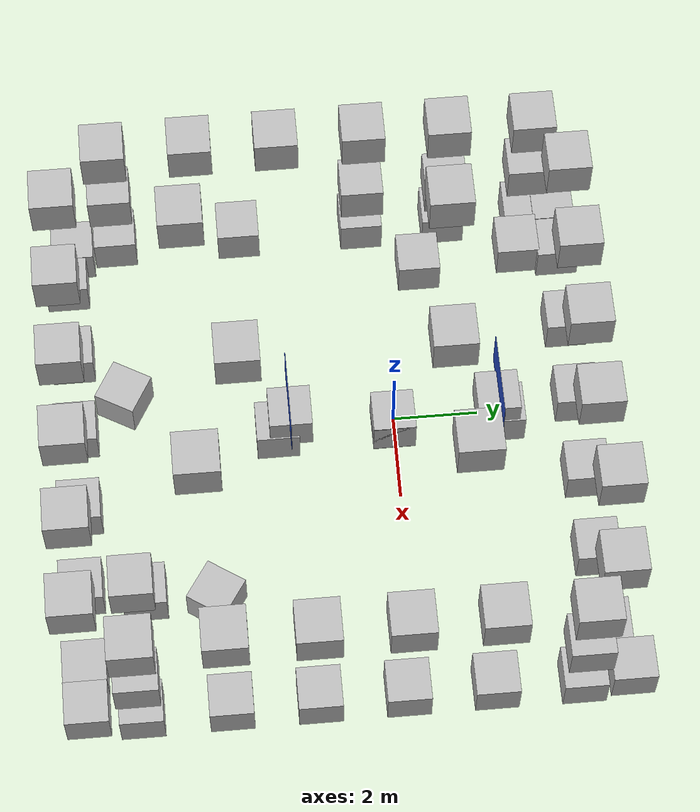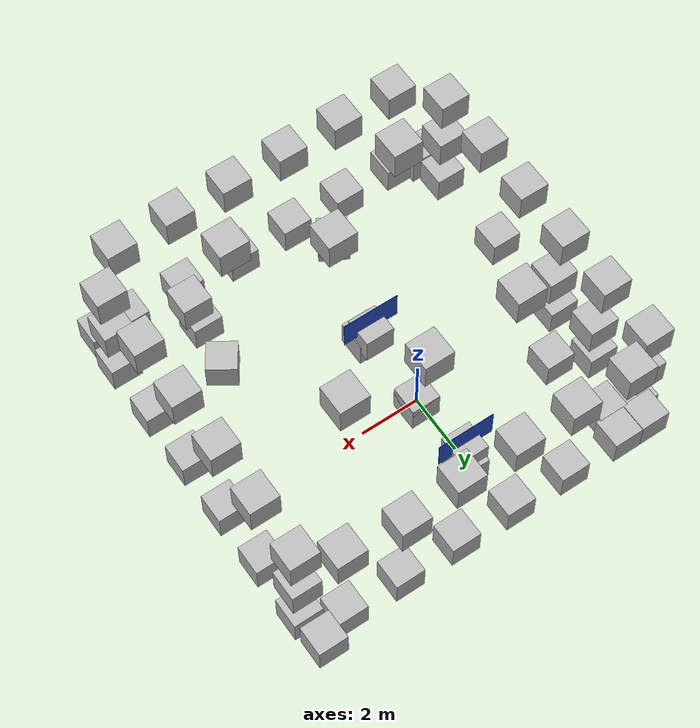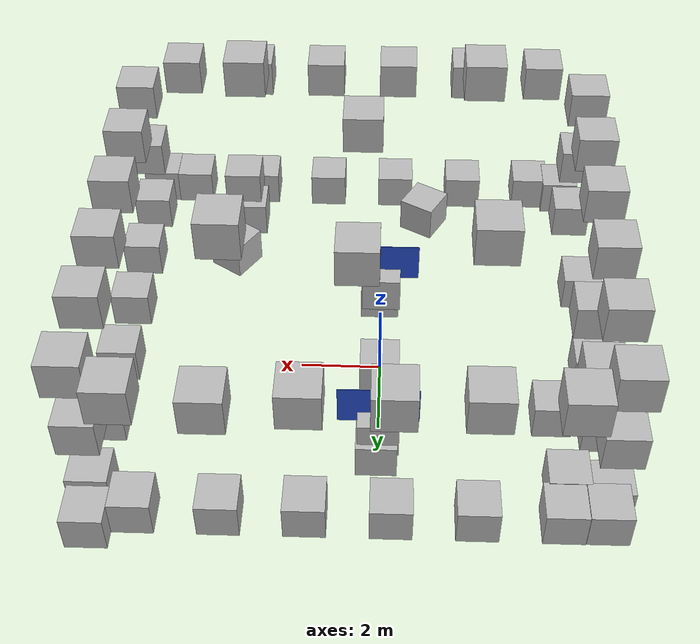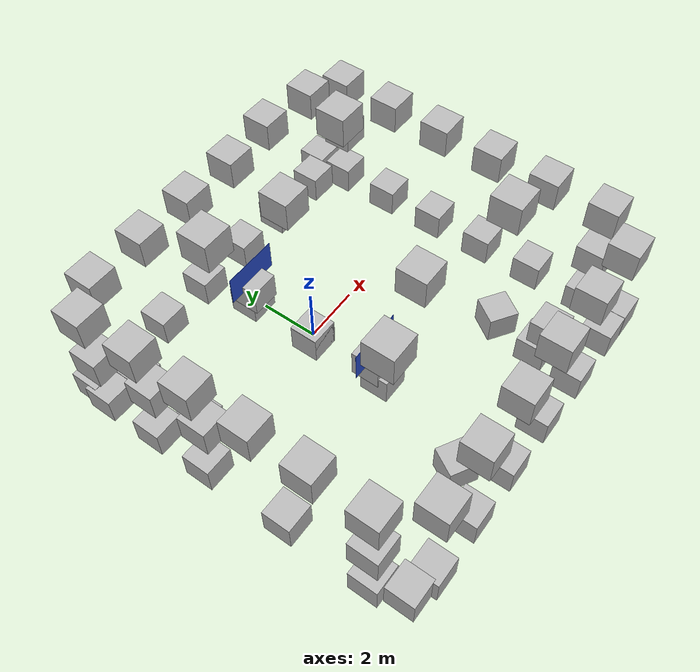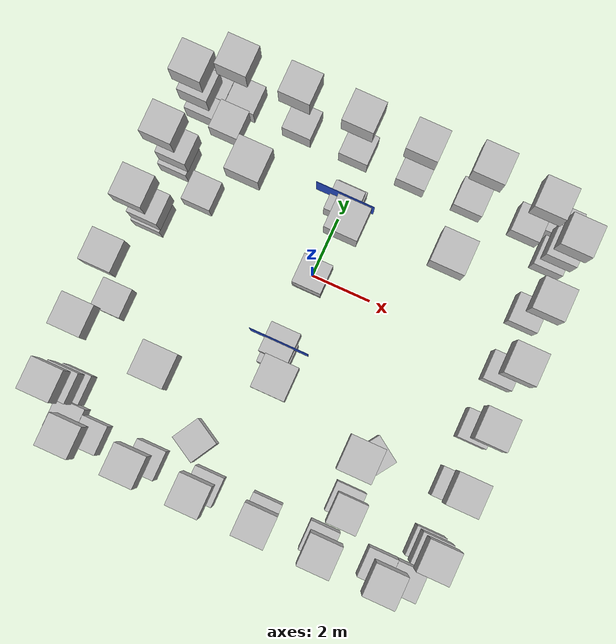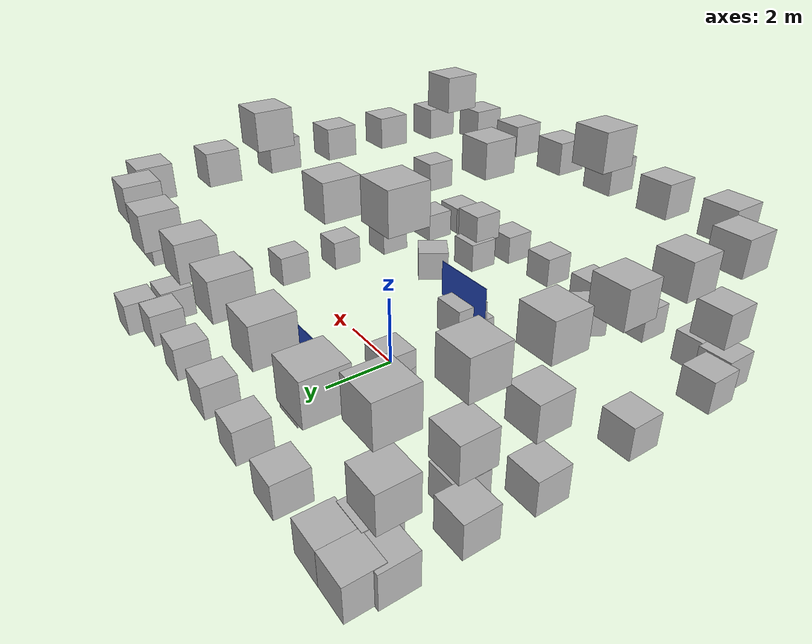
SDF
<sdf version="1.6">
 <world name="default">
  <model name="concretewall1_0">
   <static>1</static>
   <link name="concretewall::body">
    <collision name="concretewall1">
     <pose>0 0 1 0 0 0</pose>
     <geometry><box><size>2 0.4 2.0</size></box></geometry>
    </collision>
    <visual name="concretewall1"><geometry><box><size>1 1 1</size></box></geometry></visual>
    <velocity_decay><linear>0</linear><angular>0</angular></velocity_decay>
   </link>
   <pose>-5.46911 -2.30918 4.02082 0 -0 1.5708</pose>
  </model>
  <model name="concretewall1_1">
   <static>1</static>
   <link name="concretewall::body">
    <collision name="concretewall1">
     <pose>0 0 1 0 0 0</pose>
     <geometry><box><size>2 0.4 2.0</size></box></geometry>
    </collision>
    <visual name="concretewall1"><geometry><box><size>1 1 1</size></box></geometry></visual>
    <velocity_decay><linear>0</linear><angular>0</angular></velocity_decay>
   </link>
   <pose>-5.46911 -4.31171 4.02082 0 -0 1.5708</pose>
  </model>
  <model name="concretewall1_2">
   <static>1</static>
   <link name="concretewall::body">
    <collision name="concretewall1">
     <pose>0 0 1 0 0 0</pose>
     <geometry><box><size>2 0.4 2.0</size></box></geometry>
    </collision>
    <visual name="concretewall1"><geometry><box><size>1 1 1</size></box></geometry></visual>
    <velocity_decay><linear>0</linear><angular>0</angular></velocity_decay>
   </link>
   <pose>-4.343 -7.533 3.968 0 0 -3.14159</pose>
  </model>
  <model name="concretewall1_3">
   <static>1</static>
   <link name="concretewall::body">
    <collision name="concretewall1">
     <pose>0 0 1 0 0 0</pose>
     <geometry><box><size>2 0.4 2.0</size></box></geometry>
    </collision>
    <visual name="concretewall1"><geometry><box><size>1 1 1</size></box></geometry></visual>
    <velocity_decay><linear>0</linear><angular>0</angular></velocity_decay>
   </link>
   <pose>3.657 -7.533 3.968 0 0 -3.14159</pose>
  </model>
  <model name="concretewall1_4">
   <static>1</static>
   <link name="concretewall::body">
    <collision name="concretewall1">
     <pose>0 0 1 0 0 0</pose>
     <geometry><box><size>2 0.4 2.0</size></box></geometry>
    </collision>
    <visual name="concretewall1"><geometry><box><size>1 1 1</size></box></geometry></visual>
    <velocity_decay><linear>0</linear><angular>0</angular></velocity_decay>
   </link>
   <pose>5.657 -7.533 3.968 0 0 -3.14159</pose>
  </model>
  <model name="concretewall1_5">
   <static>1</static>
   <link name="concretewall::body">
    <collision name="concretewall1">
     <pose>0 0 1 0 0 0</pose>
     <geometry><box><size>2 0.4 2.0</size></box></geometry>
    </collision>
    <visual name="concretewall1"><geometry><box><size>1 1 1</size></box></geometry></visual>
    <velocity_decay><linear>0</linear><angular>0</angular></velocity_decay>
   </link>
   <pose>-4.343 4.378 3.968 0 0 -3.14159</pose>
  </model>
  <model name="woodwall_10">
   <static>1</static>
   <link name="woodwall::body">
    <collision name="woodwall-coll">
     <pose>0 0 1 0 0 0</pose>
     <geometry><box><size>2 0.4 2.0</size></box></geometry>
    </collision>
    <visual name="woodwall"><geometry><box><size>1 1 1</size></box></geometry></visual>
    <velocity_decay><linear>0</linear><angular>0</angular></velocity_decay>
   </link>
   <pose>6.748 3.697 2 0 -0 1.5708</pose>
  </model>
  <model name="woodwall_11">
   <static>1</static>
   <link name="woodwall::body">
    <collision name="woodwall-coll">
     <pose>0 0 1 0 0 0</pose>
     <geometry><box><size>2 0.4 2.0</size></box></geometry>
    </collision>
    <visual name="woodwall"><geometry><box><size>1 1 1</size></box></geometry></visual>
    <velocity_decay><linear>0</linear><angular>0</angular></velocity_decay>
   </link>
   <pose>6.748 3.697 3.977 0 -0 1.5708</pose>
  </model>
  <model name="right_vr_screen">
   <static>1</static>
   <link name="body">
    <collision name="frame">
     <pose>0 0.13 0.7 0 -0 0</pose>
     <geometry><box><size>2 0.18 1.4</size></box></geometry>
    </collision>
    <visual name="screen"><geometry><box><size>1 1 1</size></box></geometry></visual>
    <visual name="screen_glass">
     <cast_shadows>0</cast_shadows>
     <pose>0 0.02 0.75 0 -0 0</pose>
     <geometry><box><size>1.96 0.015 1.1</size></box></geometry>
     <material>
      <script><uri>file://media/materials/scripts/gazebo.material</uri><name>Gazebo/BlueGlow</name></script>
     </material>
    </visual>
    <gravity>0</gravity>
   </link>
   <pose>0 2.44 0.65 0 -0 0</pose>
  </model>
  <model name="bench_0">
   <static>1</static>
   <link name="bench::body">
    <collision name="bench-coll"><geometry><box><size>1 1 1</size></box></geometry></collision>
    <visual name="bench"><geometry><box><size>1 1 1</size></box></geometry></visual>
    <velocity_decay><linear>0</linear><angular>0</angular></velocity_decay>
   </link>
   <pose>-4.36935 1.01034 -0.280649 0 -0 0</pose>
  </model>
  <model name="woodtable_0">
   <static>1</static>
   <link name="woodtable::body">
    <collision name="woodtable-coll"><geometry><box><size>1 1 1</size></box></geometry></collision>
    <visual name="woodtable"><geometry><box><size>1 1 1</size></box></geometry></visual>
    <velocity_decay><linear>0</linear><angular>0</angular></velocity_decay>
   </link>
   <pose>3.90716 -6.09161 0.018804 0 -0 0</pose>
  </model>
  <model name="squarewindow_10">
   <static>1</static>
   <link name="squarewindow::body">
    <collision name="squarewindow-coll"><geometry><box><size>1 1 1</size></box></geometry></collision>
    <visual name="squarewindow"><geometry><box><size>1 1 1</size></box></geometry></visual>
    <velocity_decay><linear>0</linear><angular>0</angular></velocity_decay>
   </link>
   <pose>6.732 -2.29658 4.026 0 -0 1.5708</pose>
  </model>
  <model name="squarewindow_11">
   <static>1</static>
   <link name="squarewindow::body">
    <collision name="squarewindow-coll"><geometry><box><size>1 1 1</size></box></geometry></collision>
    <visual name="squarewindow"><geometry><box><size>1 1 1</size></box></geometry></visual>
    <velocity_decay><linear>0</linear><angular>0</angular></velocity_decay>
   </link>
   <pose>6.732 -4.29891 4.026 0 -0 1.5708</pose>
  </model>
  <model name="squarewindow_12">
   <static>1</static>
   <link name="squarewindow::body">
    <collision name="squarewindow-coll"><geometry><box><size>1 1 1</size></box></geometry></collision>
    <visual name="squarewindow"><geometry><box><size>1 1 1</size></box></geometry></visual>
    <velocity_decay><linear>0</linear><angular>0</angular></velocity_decay>
   </link>
   <pose>3.657 4.578 3.973 0 -0 3.14159</pose>
  </model>
  <model name="ground">
   <static>1</static>
   <link name="link">
    <collision name="collision">
     <pose>0 0 0.016 0 0 0</pose>
     <geometry><box><size>22.938 22.954 0.016</size></box></geometry>
    </collision>
    <visual name="visual">
     <cast_shadows>0</cast_shadows>
     <geometry><box><size>1 1 1</size></box></geometry>
    </visual>
    <self_collide>1</self_collide>
   </link>
  </model>
  <model name="concretepylon_1">
   <static>1</static>
   <link name="concretepylon::body">
    <collision name="concretepylon-coll">
     <pose>0 0 3 0 0 0</pose>
     <geometry><cylinder><radius>0.5</radius><length>6</length></cylinder></geometry>
    </collision>
    <visual name="highpylon"><geometry><box><size>1 1 1</size></box></geometry></visual>
    <velocity_decay><linear>0</linear><angular>0</angular></velocity_decay>
   </link>
   <pose>6.65107 4.82045 0.019561 0 -0 0</pose>
  </model>
  <model name="computer_0">
   <static>1</static>
   <link name="Computer::body">
    <collision name="Computer-coll"><geometry><box><size>1 1 1</size></box></geometry></collision>
    <visual name="Computer"><geometry><box><size>1 1 1</size></box></geometry></visual>
    <velocity_decay><linear>0</linear><angular>0</angular></velocity_decay>
   </link>
   <pose>4.0505 -6.35426 0.944646 0 0 -1.5708</pose>
  </model>
  <model name="concretewall1_6">
   <static>1</static>
   <link name="concretewall::body">
    <collision name="concretewall1">
     <pose>0 0 1 0 0 0</pose>
     <geometry><box><size>2 0.4 2.0</size></box></geometry>
    </collision>
    <visual name="concretewall1"><geometry><box><size>1 1 1</size></box></geometry></visual>
    <velocity_decay><linear>0</linear><angular>0</angular></velocity_decay>
   </link>
   <pose>5.657 4.378 3.968 0 0 -3.14159</pose>
  </model>
  <model name="squarewindow_8">
   <static>1</static>
   <link name="squarewindow::body">
    <collision name="squarewindow-coll"><geometry><box><size>1 1 1</size></box></geometry></collision>
    <visual name="squarewindow"><geometry><box><size>1 1 1</size></box></geometry></visual>
    <velocity_decay><linear>0</linear><angular>0</angular></velocity_decay>
   </link>
   <pose>6.732 -0.287 4.026 0 -0 1.5708</pose>
  </model>
  <model name="woodwall_5">
   <static>1</static>
   <link name="woodwall::body">
    <collision name="woodwall-coll">
     <pose>0 0 1 0 0 0</pose>
     <geometry><box><size>2 0.4 2.0</size></box></geometry>
    </collision>
    <visual name="woodwall"><geometry><box><size>1 1 1</size></box></geometry></visual>
    <velocity_decay><linear>0</linear><angular>0</angular></velocity_decay>
   </link>
   <pose>-5.476 3.691 3.977 0 -0 1.5708</pose>
  </model>
  <model name="squarewindow_6">
   <static>1</static>
   <link name="squarewindow::body">
    <collision name="squarewindow-coll"><geometry><box><size>1 1 1</size></box></geometry></collision>
    <visual name="squarewindow"><geometry><box><size>1 1 1</size></box></geometry></visual>
    <velocity_decay><linear>0</linear><angular>0</angular></velocity_decay>
   </link>
   <pose>-0.343 4.39 3.973 0 -0 3.14159</pose>
  </model>
  <model name="squarewindow_7">
   <static>1</static>
   <link name="squarewindow::body">
    <collision name="squarewindow-coll"><geometry><box><size>1 1 1</size></box></geometry></collision>
    <visual name="squarewindow"><geometry><box><size>1 1 1</size></box></geometry></visual>
    <velocity_decay><linear>0</linear><angular>0</angular></velocity_decay>
   </link>
   <pose>1.657 4.39 3.973 0 -0 3.14159</pose>
  </model>
  <model name="squarewindow_4">
   <static>1</static>
   <link name="squarewindow::body">
    <collision name="squarewindow-coll"><geometry><box><size>1 1 1</size></box></geometry></collision>
    <visual name="squarewindow"><geometry><box><size>1 1 1</size></box></geometry></visual>
    <velocity_decay><linear>0</linear><angular>0</angular></velocity_decay>
   </link>
   <pose>-0.343 -7.52824 3.9729 0 -0 0</pose>
  </model>
  <model name="squarewindow_5">
   <static>1</static>
   <link name="squarewindow::body">
    <collision name="squarewindow-coll"><geometry><box><size>1 1 1</size></box></geometry></collision>
    <visual name="squarewindow"><geometry><box><size>1 1 1</size></box></geometry></visual>
    <velocity_decay><linear>0</linear><angular>0</angular></velocity_decay>
   </link>
   <pose>1.657 -7.52824 3.9729 0 -0 0</pose>
  </model>
  <model name="squarewindow_2">
   <static>1</static>
   <link name="squarewindow::body">
    <collision name="squarewindow-coll"><geometry><box><size>1 1 1</size></box></geometry></collision>
    <visual name="squarewindow"><geometry><box><size>1 1 1</size></box></geometry></visual>
    <velocity_decay><linear>0</linear><angular>0</angular></velocity_decay>
   </link>
   <pose>-2.343 4.39 3.973 0 -0 3.14159</pose>
  </model>
  <model name="squarewindow_3">
   <static>1</static>
   <link name="squarewindow::body">
    <collision name="squarewindow-coll"><geometry><box><size>1 1 1</size></box></geometry></collision>
    <visual name="squarewindow"><geometry><box><size>1 1 1</size></box></geometry></visual>
    <velocity_decay><linear>0</linear><angular>0</angular></velocity_decay>
   </link>
   <pose>-2.343 -7.52824 3.9729 0 -0 0</pose>
  </model>
  <model name="squarewindow_0">
   <static>1</static>
   <link name="squarewindow::body">
    <collision name="squarewindow-coll"><geometry><box><size>1 1 1</size></box></geometry></collision>
    <visual name="squarewindow"><geometry><box><size>1 1 1</size></box></geometry></visual>
    <velocity_decay><linear>0</linear><angular>0</angular></velocity_decay>
   </link>
   <pose>-5.4732 -0.287088 4.02572 0 0 -1.5708</pose>
  </model>
  <model name="squarewindow_1">
   <static>1</static>
   <link name="squarewindow::body">
    <collision name="squarewindow-coll"><geometry><box><size>1 1 1</size></box></geometry></collision>
    <visual name="squarewindow"><geometry><box><size>1 1 1</size></box></geometry></visual>
    <velocity_decay><linear>0</linear><angular>0</angular></velocity_decay>
   </link>
   <pose>-5.4732 1.71291 4.02572 0 0 -1.5708</pose>
  </model>
  <model name="viz_poster_0">
   <static>1</static>
   <link name="vr_poster::body">
    <visual name="vr_poster"><geometry><box><size>1 1 1</size></box></geometry></visual>
   </link>
   <pose>-5.27605 -0.322974 1.92915 0 -0 0</pose>
  </model>
  <model name="concretepylon_2">
   <static>1</static>
   <link name="concretepylon::body">
    <collision name="concretepylon-coll">
     <pose>0 0 3 0 0 0</pose>
     <geometry><cylinder><radius>0.5</radius><length>6</length></cylinder></geometry>
    </collision>
    <visual name="highpylon"><geometry><box><size>1 1 1</size></box></geometry></visual>
    <velocity_decay><linear>0</linear><angular>0</angular></velocity_decay>
   </link>
   <pose>-5.35088 4.37792 0.019561 0 -0 0</pose>
  </model>
  <model name="concretepylon_3">
   <static>1</static>
   <link name="concretepylon::body">
    <collision name="concretepylon-coll">
     <pose>0 0 3 0 0 0</pose>
     <geometry><cylinder><radius>0.5</radius><length>6</length></cylinder></geometry>
    </collision>
    <visual name="highpylon"><geometry><box><size>1 1 1</size></box></geometry></visual>
    <velocity_decay><linear>0</linear><angular>0</angular></velocity_decay>
   </link>
   <pose>6.65107 -7.53909 0.019561 0 -0 0</pose>
  </model>
  <model name="sofa_0">
   <static>1</static>
   <link name="sofa::body">
    <collision name="sofa-coll"><geometry><box><size>1 1 1</size></box></geometry></collision>
    <visual name="sofa"><geometry><box><size>1 1 1</size></box></geometry></visual>
    <velocity_decay><linear>0</linear><angular>0</angular></velocity_decay>
   </link>
   <pose>-1.19702 -6.30912 -0.074259 0 -0 2.62634</pose>
  </model>
  <model name="squarewindow_9">
   <static>1</static>
   <link name="squarewindow::body">
    <collision name="squarewindow-coll"><geometry><box><size>1 1 1</size></box></geometry></collision>
    <visual name="squarewindow"><geometry><box><size>1 1 1</size></box></geometry></visual>
    <velocity_decay><linear>0</linear><angular>0</angular></velocity_decay>
   </link>
   <pose>6.73181 1.697 4.02572 0 -0 1.5708</pose>
  </model>
  <model name="top_lamp_1">
   <static>1</static>
   <link name="top_lamp::body">
    <collision name="top_lamp-coll"><geometry><box><size>1 1 1</size></box></geometry></collision>
    <visual name="top_lamp">
     <cast_shadows>0</cast_shadows>
     <geometry><box><size>1 1 1</size></box></geometry>
    </visual>
    <velocity_decay><linear>0</linear><angular>0</angular></velocity_decay>
   </link>
   <pose>0.529 1.203 5.077 0 -0 0</pose>
  </model>
  <model name="top_lamp_0">
   <static>1</static>
   <link name="top_lamp::body">
    <collision name="top_lamp-coll"><geometry><box><size>1 1 1</size></box></geometry></collision>
    <visual name="top_lamp">
     <cast_shadows>0</cast_shadows>
     <geometry><box><size>1 1 1</size></box></geometry>
    </visual>
    <velocity_decay><linear>0</linear><angular>0</angular></velocity_decay>
   </link>
   <pose>0.528672 -3.579 5.07716 0 -0 0</pose>
  </model>
  <model name="woodwall_3">
   <static>1</static>
   <link name="woodwall::body">
    <collision name="woodwall-coll">
     <pose>0 0 1 0 0 0</pose>
     <geometry><box><size>2 0.4 2.0</size></box></geometry>
    </collision>
    <visual name="woodwall"><geometry><box><size>1 1 1</size></box></geometry></visual>
    <velocity_decay><linear>0</linear><angular>0</angular></velocity_decay>
   </link>
   <pose>-5.47636 3.69107 0 0 -0 1.5708</pose>
  </model>
  <model name="bigtopwindow_0">
   <static>1</static>
   <link name="bigtopwindow::body">
    <collision name="bigtopwindow-coll"><geometry><box><size>6 6 0.082</size></box></geometry></collision>
    <visual name="bigtopwindow">
     <cast_shadows>0</cast_shadows>
     <geometry><box><size>1 1 1</size></box></geometry>
    </visual>
    <velocity_decay><linear>0</linear><angular>0</angular></velocity_decay>
   </link>
   <pose>-2.48074 -4.60158 5.97425 0 -0 0</pose>
  </model>
  <model name="bigtopwindow_1">
   <static>1</static>
   <link name="bigtopwindow::body">
    <collision name="bigtopwindow-coll"><geometry><box><size>6 6 0.082</size></box></geometry></collision>
    <visual name="bigtopwindow">
     <cast_shadows>0</cast_shadows>
     <geometry><box><size>1 1 1</size></box></geometry>
    </visual>
    <velocity_decay><linear>0</linear><angular>0</angular></velocity_decay>
   </link>
   <pose>-2.48074 1.39842 5.97425 0 -0 0</pose>
  </model>
  <model name="bigtopwindow_2">
   <static>1</static>
   <link name="bigtopwindow::body">
    <collision name="bigtopwindow-coll"><geometry><box><size>6 6 0.082</size></box></geometry></collision>
    <visual name="bigtopwindow">
     <cast_shadows>0</cast_shadows>
     <geometry><box><size>1 1 1</size></box></geometry>
    </visual>
    <velocity_decay><linear>0</linear><angular>0</angular></velocity_decay>
   </link>
   <pose>3.51926 -4.60158 5.97425 0 -0 0</pose>
  </model>
  <model name="bigtopwindow_3">
   <static>1</static>
   <link name="bigtopwindow::body">
    <collision name="bigtopwindow-coll"><geometry><box><size>6 6 0.082</size></box></geometry></collision>
    <visual name="bigtopwindow">
     <cast_shadows>0</cast_shadows>
     <geometry><box><size>1 1 1</size></box></geometry>
    </visual>
    <velocity_decay><linear>0</linear><angular>0</angular></velocity_decay>
   </link>
   <pose>3.51926 1.39842 5.97425 0 -0 0</pose>
  </model>
  <model name="concretewallhigh_6">
   <static>1</static>
   <link name="concretewallhigh::body">
    <collision name="concretewallhigh-coll">
     <pose>0 0 2 0 0 0</pose>
     <geometry><box><size>2 0.4 4.0</size></box></geometry>
    </collision>
    <visual name="concretewallhigh"><geometry><box><size>1 1 1</size></box></geometry></visual>
    <velocity_decay><linear>0</linear><angular>0</angular></velocity_decay>
   </link>
   <pose>-4.343 4.378 0.01 0 -0 0</pose>
  </model>
  <model name="viz_poster_2_0">
   <static>1</static>
   <link name="vr_poster_2::body">
    <visual name="vr_poster_2"><geometry><box><size>1 1 1</size></box></geometry></visual>
   </link>
   <pose>-5.27605 1.68818 1.91121 0 -0 0</pose>
  </model>
  <model name="concretewallhigh_4">
   <static>1</static>
   <link name="concretewallhigh::body">
    <collision name="concretewallhigh-coll">
     <pose>0 0 2 0 0 0</pose>
     <geometry><box><size>2 0.4 4.0</size></box></geometry>
    </collision>
    <visual name="concretewallhigh"><geometry><box><size>1 1 1</size></box></geometry></visual>
    <velocity_decay><linear>0</linear><angular>0</angular></velocity_decay>
   </link>
   <pose>3.65669 -7.53299 0.00977 0 -0 0</pose>
  </model>
  <model name="concretewallhigh_5">
   <static>1</static>
   <link name="concretewallhigh::body">
    <collision name="concretewallhigh-coll">
     <pose>0 0 2 0 0 0</pose>
     <geometry><box><size>2 0.4 4.0</size></box></geometry>
    </collision>
    <visual name="concretewallhigh"><geometry><box><size>1 1 1</size></box></geometry></visual>
    <velocity_decay><linear>0</linear><angular>0</angular></velocity_decay>
   </link>
   <pose>5.65775 -7.53299 0.00977 0 -0 0</pose>
  </model>
  <model name="concretewallhigh_3">
   <static>1</static>
   <link name="concretewallhigh::body">
    <collision name="concretewallhigh-coll">
     <pose>0 0 2 0 0 0</pose>
     <geometry><box><size>2 0.4 4.0</size></box></geometry>
    </collision>
    <visual name="concretewallhigh"><geometry><box><size>1 1 1</size></box></geometry></visual>
    <velocity_decay><linear>0</linear><angular>0</angular></velocity_decay>
   </link>
   <pose>-4.34331 -7.53299 0.00977 0 -0 0</pose>
  </model>
  <model name="concretewallhigh_0">
   <static>1</static>
   <link name="concretewallhigh::body">
    <collision name="concretewallhigh-coll">
     <pose>0 0 2 0 0 0</pose>
     <geometry><box><size>2 0.4 4.0</size></box></geometry>
    </collision>
    <visual name="concretewallhigh"><geometry><box><size>1 1 1</size></box></geometry></visual>
    <velocity_decay><linear>0</linear><angular>0</angular></velocity_decay>
   </link>
   <pose>-5.47636 -0.316687 0.015928 0 -0 1.5708</pose>
  </model>
  <model name="concretewallhigh_1">
   <static>1</static>
   <link name="concretewallhigh::body">
    <collision name="concretewallhigh-coll">
     <pose>0 0 2 0 0 0</pose>
     <geometry><box><size>2 0.4 4.0</size></box></geometry>
    </collision>
    <visual name="concretewallhigh"><geometry><box><size>1 1 1</size></box></geometry></visual>
    <velocity_decay><linear>0</linear><angular>0</angular></velocity_decay>
   </link>
   <pose>-5.47636 1.68331 0.015928 0 -0 1.5708</pose>
  </model>
  <model name="vr_lamp_0">
   <static>1</static>
   <link name="vr_lamp::body">
    <collision name="pole">
     <pose>0 0 0.924 0 -0 0</pose>
     <geometry><cylinder><radius>0.0165</radius><length>1.848</length></cylinder></geometry>
    </collision>
    <collision name="base"><geometry><box><size>0.42 0.362 0.005</size></box></geometry></collision>
    <collision name="top">
     <pose>0 0 1.87 0 -0 0</pose>
     <geometry><box><size>0.61 0.37 0.037</size></box></geometry>
    </collision>
    <visual name="lamp"><geometry><box><size>1 1 1</size></box></geometry></visual>
    <velocity_decay><linear>0</linear><angular>0</angular></velocity_decay>
   </link>
   <pose>-4.49007 3.42436 0.02422 0 -0 1.5708</pose>
  </model>
  <model name="concretewallhigh_8">
   <static>1</static>
   <link name="concretewallhigh::body">
    <collision name="concretewallhigh-coll">
     <pose>0 0 2 0 0 0</pose>
     <geometry><box><size>2 0.4 4.0</size></box></geometry>
    </collision>
    <visual name="concretewallhigh"><geometry><box><size>1 1 1</size></box></geometry></visual>
    <velocity_decay><linear>0</linear><angular>0</angular></velocity_decay>
   </link>
   <pose>5.657 4.378 0.01 0 -0 0</pose>
  </model>
  <model name="highwindow_1">
   <static>1</static>
   <link name="highwindow::body">
    <collision name="highwindow-coll"><geometry><box><size>1 1 1</size></box></geometry></collision>
    <visual name="highwindow"><geometry><box><size>1 1 1</size></box></geometry></visual>
    <velocity_decay><linear>0</linear><angular>0</angular></velocity_decay>
   </link>
   <pose>-0.34331 -7.4879 0.019561 0 -0 0</pose>
  </model>
  <model name="highwindow_0">
   <static>1</static>
   <link name="highwindow::body">
    <collision name="highwindow-coll"><geometry><box><size>1 1 1</size></box></geometry></collision>
    <visual name="highwindow"><geometry><box><size>1 1 1</size></box></geometry></visual>
    <velocity_decay><linear>0</linear><angular>0</angular></velocity_decay>
   </link>
   <pose>-2.34331 -7.4879 0.019561 0 -0 0</pose>
  </model>
  <model name="highwindow_3">
   <static>1</static>
   <link name="highwindow::body">
    <collision name="highwindow-coll"><geometry><box><size>1 1 1</size></box></geometry></collision>
    <visual name="highwindow"><geometry><box><size>1 1 1</size></box></geometry></visual>
    <velocity_decay><linear>0</linear><angular>0</angular></velocity_decay>
   </link>
   <pose>-2.343 4.37817 0.02 0 -0 3.14159</pose>
  </model>
  <model name="highwindow_2">
   <static>1</static>
   <link name="highwindow::body">
    <collision name="highwindow-coll"><geometry><box><size>1 1 1</size></box></geometry></collision>
    <visual name="highwindow"><geometry><box><size>1 1 1</size></box></geometry></visual>
    <velocity_decay><linear>0</linear><angular>0</angular></velocity_decay>
   </link>
   <pose>1.65669 -7.4879 0.019561 0 -0 0</pose>
  </model>
  <model name="highwindow_5">
   <static>1</static>
   <link name="highwindow::body">
    <collision name="highwindow-coll"><geometry><box><size>1 1 1</size></box></geometry></collision>
    <visual name="highwindow"><geometry><box><size>1 1 1</size></box></geometry></visual>
    <velocity_decay><linear>0</linear><angular>0</angular></velocity_decay>
   </link>
   <pose>1.657 4.378 0.02 0 -0 3.14159</pose>
  </model>
  <model name="highwindow_4">
   <static>1</static>
   <link name="highwindow::body">
    <collision name="highwindow-coll"><geometry><box><size>1 1 1</size></box></geometry></collision>
    <visual name="highwindow"><geometry><box><size>1 1 1</size></box></geometry></visual>
    <velocity_decay><linear>0</linear><angular>0</angular></velocity_decay>
   </link>
   <pose>-0.343 4.378 0.02 0 -0 3.14159</pose>
  </model>
  <model name="highwindow_7">
   <static>1</static>
   <link name="highwindow::body">
    <collision name="highwindow-coll"><geometry><box><size>1 1 1</size></box></geometry></collision>
    <visual name="highwindow"><geometry><box><size>1 1 1</size></box></geometry></visual>
    <velocity_decay><linear>0</linear><angular>0</angular></velocity_decay>
   </link>
   <pose>6.74039 -2.29538 0.019561 0 -0 1.5708</pose>
  </model>
  <model name="concretewallhigh_7">
   <static>1</static>
   <link name="concretewallhigh::body">
    <collision name="concretewallhigh-coll">
     <pose>0 0 2 0 0 0</pose>
     <geometry><box><size>2 0.4 4.0</size></box></geometry>
    </collision>
    <visual name="concretewallhigh"><geometry><box><size>1 1 1</size></box></geometry></visual>
    <velocity_decay><linear>0</linear><angular>0</angular></velocity_decay>
   </link>
   <pose>3.657 4.378 0.01 0 -0 0</pose>
  </model>
  <model name="highwindow_9">
   <static>1</static>
   <link name="highwindow::body">
    <collision name="highwindow-coll"><geometry><box><size>1 1 1</size></box></geometry></collision>
    <visual name="highwindow"><geometry><box><size>1 1 1</size></box></geometry></visual>
    <velocity_decay><linear>0</linear><angular>0</angular></velocity_decay>
   </link>
   <pose>6.74 1.705 0.02 0 -0 1.5708</pose>
  </model>
  <model name="highwindow_8">
   <static>1</static>
   <link name="highwindow::body">
    <collision name="highwindow-coll"><geometry><box><size>1 1 1</size></box></geometry></collision>
    <visual name="highwindow"><geometry><box><size>1 1 1</size></box></geometry></visual>
    <velocity_decay><linear>0</linear><angular>0</angular></velocity_decay>
   </link>
   <pose>6.74 -0.295 0.02 0 -0 1.5708</pose>
  </model>
  <model name="highwindow_6">
   <static>1</static>
   <link name="highwindow::body">
    <collision name="highwindow-coll"><geometry><box><size>1 1 1</size></box></geometry></collision>
    <visual name="highwindow"><geometry><box><size>1 1 1</size></box></geometry></visual>
    <velocity_decay><linear>0</linear><angular>0</angular></velocity_decay>
   </link>
   <pose>6.74039 -4.29539 0.019561 0 -0 1.5708</pose>
  </model>
  <model name="carpetground_0">
   <static>1</static>
   <link name="carpetground::body">
    <collision name="carpetground-collision">
     <pose>0 0 0.0125 0 0 0</pose>
     <geometry><box><size>6 6 0.025</size></box></geometry>
    </collision>
    <visual name="carpetground"><geometry><box><size>1 1 1</size></box></geometry></visual>
   </link>
   <pose>0 0 0.02 0 -0 0</pose>
  </model>
  <model name="woodwall_4">
   <static>1</static>
   <link name="woodwall::body">
    <collision name="woodwall-coll">
     <pose>0 0 1 0 0 0</pose>
     <geometry><box><size>2 0.4 2.0</size></box></geometry>
    </collision>
    <visual name="woodwall"><geometry><box><size>1 1 1</size></box></geometry></visual>
    <velocity_decay><linear>0</linear><angular>0</angular></velocity_decay>
   </link>
   <pose>-5.476 3.6915 2 0 -0 1.5708</pose>
  </model>
  <model name="concretepylon_0">
   <static>1</static>
   <link name="concretepylon::body">
    <collision name="concretepylon-coll">
     <pose>0 0 3 0 0 0</pose>
     <geometry><cylinder><radius>0.5</radius><length>6</length></cylinder></geometry>
    </collision>
    <visual name="highpylon"><geometry><box><size>1 1 1</size></box></geometry></visual>
    <velocity_decay><linear>0</linear><angular>0</angular></velocity_decay>
   </link>
   <pose>-5.21683 -7.3505 0.019561 0 -0 0</pose>
  </model>
  <model name="woodwall_6">
   <static>1</static>
   <link name="woodwall::body">
    <collision name="woodwall-coll">
     <pose>0 0 1 0 0 0</pose>
     <geometry><box><size>2 0.4 2.0</size></box></geometry>
    </collision>
    <visual name="woodwall"><geometry><box><size>1 1 1</size></box></geometry></visual>
    <velocity_decay><linear>0</linear><angular>0</angular></velocity_decay>
   </link>
   <pose>6.74826 -6.31669 0 0 -0 1.5708</pose>
  </model>
  <model name="woodwall_7">
   <static>1</static>
   <link name="woodwall::body">
    <collision name="woodwall-coll">
     <pose>0 0 1 0 0 0</pose>
     <geometry><box><size>2 0.4 2.0</size></box></geometry>
    </collision>
    <visual name="woodwall"><geometry><box><size>1 1 1</size></box></geometry></visual>
    <velocity_decay><linear>0</linear><angular>0</angular></velocity_decay>
   </link>
   <pose>6.748 -6.317 2 0 -0 1.5708</pose>
  </model>
  <model name="woodwall_0">
   <static>1</static>
   <link name="woodwall::body">
    <collision name="woodwall-coll">
     <pose>0 0 1 0 0 0</pose>
     <geometry><box><size>2 0.4 2.0</size></box></geometry>
    </collision>
    <visual name="woodwall"><geometry><box><size>1 1 1</size></box></geometry></visual>
    <velocity_decay><linear>0</linear><angular>0</angular></velocity_decay>
   </link>
   <pose>-5.47636 -6.31669 0 0 -0 1.5708</pose>
  </model>
  <model name="woodwall_1">
   <static>1</static>
   <link name="woodwall::body">
    <collision name="woodwall-coll">
     <pose>0 0 1 0 0 0</pose>
     <geometry><box><size>2 0.4 2.0</size></box></geometry>
    </collision>
    <visual name="woodwall"><geometry><box><size>1 1 1</size></box></geometry></visual>
    <velocity_decay><linear>0</linear><angular>0</angular></velocity_decay>
   </link>
   <pose>-5.476 -6.317 2 0 -0 1.5708</pose>
  </model>
  <model name="woodwall_2">
   <static>1</static>
   <link name="woodwall::body">
    <collision name="woodwall-coll">
     <pose>0 0 1 0 0 0</pose>
     <geometry><box><size>2 0.4 2.0</size></box></geometry>
    </collision>
    <visual name="woodwall"><geometry><box><size>1 1 1</size></box></geometry></visual>
    <velocity_decay><linear>0</linear><angular>0</angular></velocity_decay>
   </link>
   <pose>-5.476 -6.317 3.97681 0 -0 1.5708</pose>
  </model>
  <model name="left_vr_screen">
   <static>1</static>
   <link name="body">
    <collision name="frame">
     <pose>0 0.13 0.7 0 -0 0</pose>
     <geometry><box><size>2 0.18 1.4</size></box></geometry>
     <laser_retro>1.55347e-37</laser_retro>
    </collision>
    <visual name="screen"><geometry><box><size>1 1 1</size></box></geometry></visual>
    <visual name="screen_glass">
     <cast_shadows>0</cast_shadows>
     <pose>0 0.02 0.75 0 -0 0</pose>
     <geometry><box><size>1.96 0.015 1.1</size></box></geometry>
     <material>
      <script><uri>file://media/materials/scripts/gazebo.material</uri><name>Gazebo/BlueGlow</name></script>
     </material>
    </visual>
    <gravity>0</gravity>
   </link>
   <pose>0 -2.44 0.65 0 -0 3.14159</pose>
  </model>
  <model name="glassdoor_0">
   <static>1</static>
   <link name="highwindow::body">
    <collision name="highwindow-coll"><geometry><box><size>1 1 1</size></box></geometry></collision>
    <visual name="highwindow"><geometry><box><size>1 1 1</size></box></geometry></visual>
    <velocity_decay><linear>0</linear><angular>0</angular></velocity_decay>
   </link>
   <pose>-5.47636 -3.31669 0 0 -0 1.5708</pose>
  </model>
  <model name="officechair_0">
   <static>1</static>
   <link name="officechair::body">
    <collision name="officechair-coll"><geometry><box><size>1 1 1</size></box></geometry></collision>
    <visual name="officechair"><geometry><box><size>1 1 1</size></box></geometry></visual>
    <velocity_decay><linear>0</linear><angular>0</angular></velocity_decay>
   </link>
   <pose>4.16044 -4.45334 0.013045 0 0 -0.585731</pose>
  </model>
  <model name="woodwall_8">
   <static>1</static>
   <link name="woodwall::body">
    <collision name="woodwall-coll">
     <pose>0 0 1 0 0 0</pose>
     <geometry><box><size>2 0.4 2.0</size></box></geometry>
    </collision>
    <visual name="woodwall"><geometry><box><size>1 1 1</size></box></geometry></visual>
    <velocity_decay><linear>0</linear><angular>0</angular></velocity_decay>
   </link>
   <pose>6.748 -6.317 3.977 0 -0 1.5708</pose>
  </model>
  <model name="woodwall_9">
   <static>1</static>
   <link name="woodwall::body">
    <collision name="woodwall-coll">
     <pose>0 0 1 0 0 0</pose>
     <geometry><box><size>2 0.4 2.0</size></box></geometry>
    </collision>
    <visual name="woodwall"><geometry><box><size>1 1 1</size></box></geometry></visual>
    <velocity_decay><linear>0</linear><angular>0</angular></velocity_decay>
   </link>
   <pose>6.74826 3.69705 0 0 -0 1.5708</pose>
  </model>
  <model name="screensupport_0">
   <pose>0.036109 2.58592 0.031598 0 -0 0</pose>
   <static>1</static>
   <link name="screensupport::body">
    <collision name="screensupport-coll"><geometry><box><size>1 1 1</size></box></geometry></collision>
    <visual name="screensupport"><geometry><box><size>1 1 1</size></box></geometry></visual>
    <velocity_decay><linear>0</linear><angular>0</angular></velocity_decay>
   </link>
  </model>
  <model name="screensupport_1">
   <pose>0.036109 -2.75095 0.031598 0 -0 0</pose>
   <static>1</static>
   <link name="screensupport::body">
    <collision name="screensupport-coll"><geometry><box><size>1 1 1</size></box></geometry></collision>
    <visual name="screensupport"><geometry><box><size>1 1 1</size></box></geometry></visual>
    <velocity_decay><linear>0</linear><angular>0</angular></velocity_decay>
   </link>
  </model>
 </world>
</sdf>
